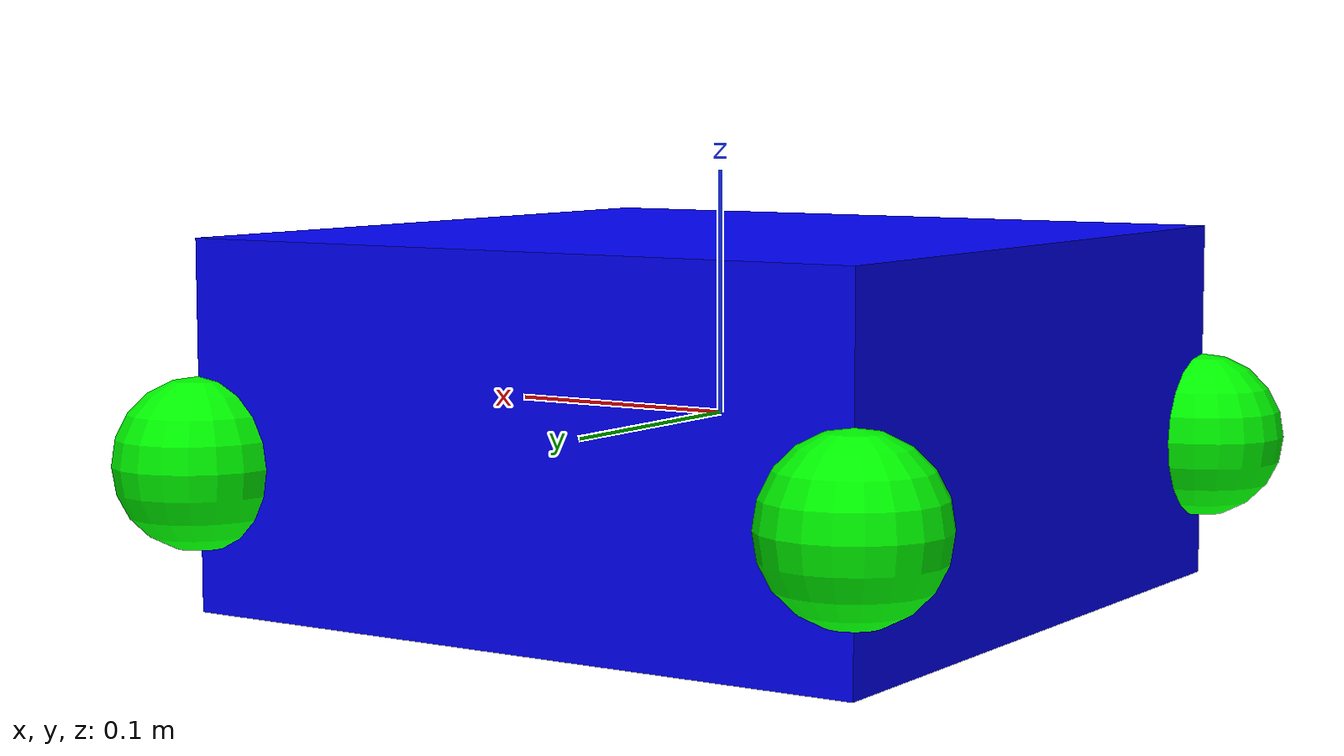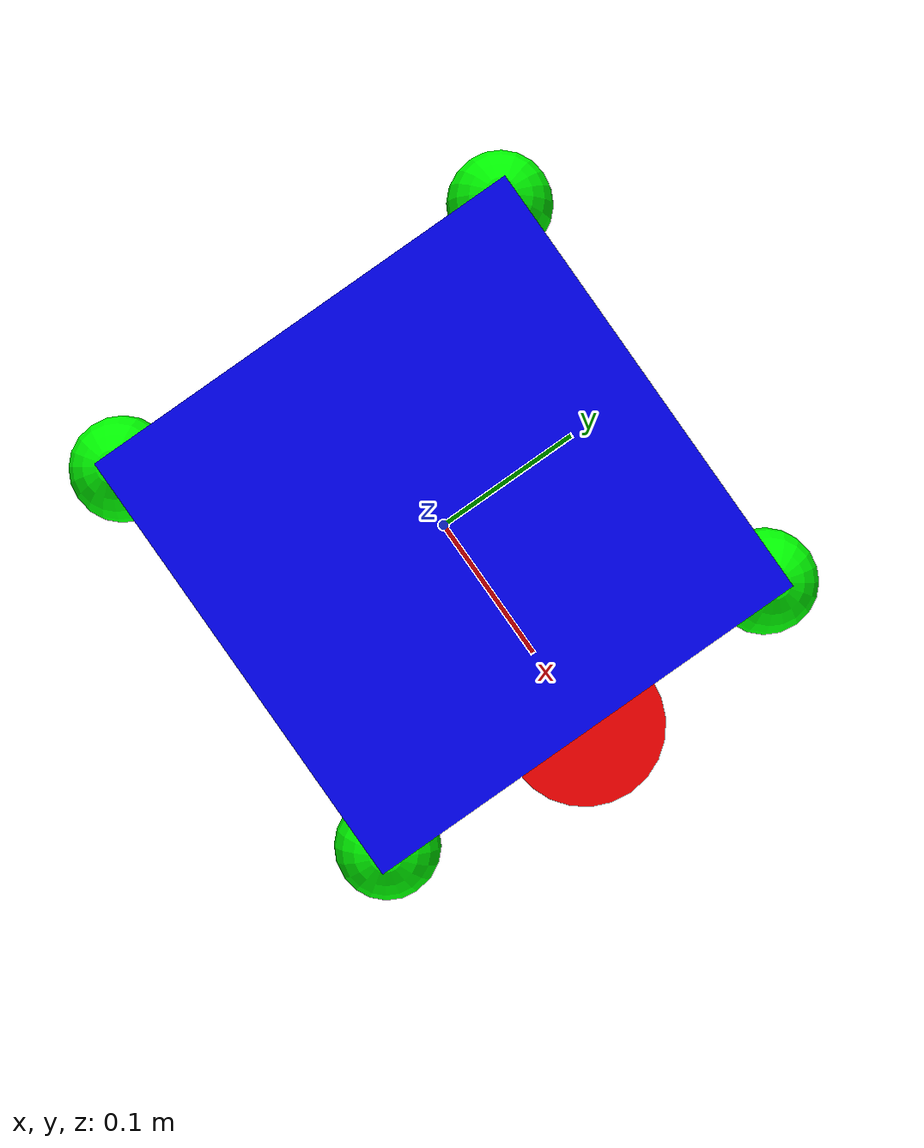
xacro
<robot name="HolonomicUrdf" xmlns:xacro="http://ros.org/wiki/xacro">
    <xacro:include filename="$(find holonomic_sim)/models/xacro/common.xacro"/>

    <link name="base_footprint"/>

    <xacro:property name="base_size" value="0.3"/>
    <xacro:rectangular_link_macro suffix="base" mass="20.0" arg="20.0" width="${base_size}" height="${base_size/2}" depth="${base_size}" if_collision="false" if_visual="true"/>
    <joint name="base_joint" type="fixed">
        <parent link="base_footprint"/>
        <child  link="base_link"/>
    </joint>

    <xacro:steer_macro suffix="wheel" parent="base_link" base_radius="0.3" wheel_radius="0.2" x="0" y="0" z="0" wheel_offset="0.15"/>
    <xacro:four_wheel_caster_macro parent="base_link" base_radius="${sqrt(base_size/2*base_size/2*2)}" caster_radius="0.035" z_offset="-0.015"/>

    <xacro:lidar_macro suffix="base" parent="base_link" x="0.15" y="0" z="0.025" rate="20" max_range="20" samples="270" angle="135" noise="0.01"/>

    <gazebo>
        <!-- Global odometer -->
        <plugin
            filename="ignition-gazebo-odometry-publisher-system"
            name="ignition::gazebo::systems::OdometryPublisher">
            <odom_publish_frequency>10</odom_publish_frequency>
            <odom_topic>/odom</odom_topic>
            <odom_frame>odom</odom_frame>
            <robot_base_frame>base_footprint</robot_base_frame>
            <tf_topic>/odom/tf</tf_topic>
        </plugin>

        <!-- Joint state publisher -->
        <plugin filename="libignition-gazebo-joint-state-publisher-system.so"
            name="ignition::gazebo::systems::JointStatePublisher">
            <topic>joint_states</topic>
        </plugin>

        <!-- Holonomic plugin -->
        <plugin filename="libHolonomicPlugin.so" name="holonomic_sim::HolonomicPlugin">
            <wheel_joint>wheel_joint</wheel_joint>
            <top_base_joint>top_wheel_base_joint</top_base_joint>
            <bottom_base_joint>bottom_wheel_base_joint</bottom_base_joint>
        </plugin>
    </gazebo>
</robot>

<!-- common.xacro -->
<robot xmlns:xacro="http://ros.org/wiki/xacro">
    <!-- basic material macro-->
    <!-- some macro has arg params to control inertial value independent from mass-->
    <xacro:macro name="sphere_macro" params="suffix parent mass arg radius x y z">
        <xacro:property name="inertia" value="${2/5*arg*radius*radius}"/>
        <link name="${suffix}_link">
            <inertial>
                <mass value="${mass}"/>
                <origin xyz="0 0 0" rpy="0 0 0"/>
                <inertia ixx="${inertia}" ixy="0.0" ixz="0.0" iyy="${inertia}" iyz="0.0" izz="${inertia}"/>
            </inertial>
            <visual>
                <geometry>
                    <sphere radius="${radius}"/>
                </geometry>
                <material name="green">
                    <color rgba="0.0 1.0 0.0 1.0"/>
                </material>
            </visual>
            <collision>
                <geometry>
                    <sphere radius="${radius}"/>
                </geometry>
                <origin xyz="0 0 0" rpy="0 0 0"/>
            </collision>
        </link>

        <joint name="${suffix}_joint" type="fixed">
            <origin rpy="0 0 0" xyz="${x} ${y} ${z}"/>
            <parent link="${parent}"/>
            <child  link="${suffix}_link"/>
        </joint>
    </xacro:macro>

    <xacro:macro name="cylinder_link_macro" params="suffix mass arg radius length if_collision if_visual">
        <xacro:property name="sq_r" value="${radius*radius}"/>
        <xacro:property name="sq_l" value="${length*length}"/>
        <link name="${suffix}_link">
            <inertial>
                <mass value="${mass}"/>
                <origin xyz="0 0 0" rpy="0 0 0"/>
                <inertia ixx="${3*sq_r*arg/12+sq_l*arg/12}" ixy="0.0" ixz="0.0" iyy="${3*sq_r*arg/12+sq_l*arg/12}"
                iyz="0.0" izz="${arg*sq_r/2}"/>
            </inertial>
            <xacro:if value="${if_visual}">
                <visual>
                    <geometry>
                        <cylinder length="${length}" radius="${radius}"/>
                    </geometry>
                    <material name="red">
                        <color rgba="1.0 0.0 0.0 1.0"/>
                    </material>
                </visual>
            </xacro:if>
            <xacro:if value="${if_collision}">
                <collision>
                    <geometry>
                        <cylinder length="${length}" radius="${radius}"/>
                    </geometry>
                    <origin xyz="0 0 0" rpy="0 0 0"/>
                </collision>
            </xacro:if>
        </link>
    </xacro:macro>

    <xacro:macro name="rectangular_link_macro" params="suffix mass arg width depth height if_collision if_visual">
        <xacro:property name="sq_w" value="${width*width}"/>
        <xacro:property name="sq_d" value="${depth*depth}"/>
        <xacro:property name="sq_h" value="${height*height}"/>
        <link name="${suffix}_link">
            <inertial>
                <mass value="${mass}"/>
                <origin xyz="0 0 0" rpy="0 0 0"/>
                <inertia ixx="${arg*sq_d/12+arg*sq_h/12}" ixy="0.0" ixz="0.0"
                iyy="${arg*sq_w/12+arg*sq_h/12}" iyz="0.0" izz="${arg*sq_w/12+arg*sq_d/12}"/>
            </inertial>
            <xacro:if value="${if_visual}">
                <visual>
                    <geometry>
                        <box size="${width} ${depth} ${height}"/>
                    </geometry>
                    <material name="blue">
                        <color rgba="0.0 0.0 1.0 1.0"/>
                    </material>
                </visual>
            </xacro:if>
            <xacro:if value="${if_collision}">
                <collision>
                    <geometry>
                        <box size="${width} ${depth} ${height}"/>
                    </geometry>
                    <origin xyz="0 0 0" rpy="0 0 0"/>
                </collision>
            </xacro:if>
        </link>
    </xacro:macro>

    <!-- lidar macro with lidar plugin for ign gz-->
    <xacro:macro name="lidar_macro" params="suffix parent x y z rate max_range samples angle noise">
        <xacro:cylinder_link_macro suffix="${suffix}_lidar" mass="0.0001" arg="0.0001" radius="0.05" length="0.05" if_collision="false"  if_visual="true"/>
        <joint name="${suffix}_lidar_joint" type="fixed">
            <parent link="${parent}"/>
            <child  link="${suffix}_lidar_link"/>
            <origin xyz="${x} ${y} ${z}" rpy="0 0 0"/>
        </joint>
        <gazebo reference="${suffix}_lidar_link">
            <sensor name="gpu_lidar" type="gpu_lidar">
                <topic>/scan</topic>
                <ignition_frame_id>${suffix}_lidar_link</ignition_frame_id>
                <update_rate>${rate}</update_rate>
                <ray>
                  <scan>
                    <horizontal>
                      <samples>${samples}</samples>
                      <resolution>1</resolution>
                      <min_angle>${-radians(angle)}</min_angle>
                      <max_angle>${radians(angle)}</max_angle>
                    </horizontal>
                  </scan>
                  <range>
                    <min>0.01</min>
                    <max>${max_range}</max>
                  </range>
                  <noise>
                    <type>gaussian</type>
                    <mean>0.0</mean>
                    <stddev>${noise}</stddev>
                  </noise>
                </ray>
                <always_on>true</always_on>
                <visualize>true</visualize>
              </sensor>
        </gazebo>
      </xacro:macro>

    <!-- four wheel caster macro -->
    <xacro:macro name="four_wheel_caster_macro" params="parent base_radius caster_radius z_offset">
        <xacro:property name="x" value="${base_radius*cos(pi/4)}" />
        <xacro:sphere_macro suffix="caster1" parent="${parent}" mass="0.3" arg="0.3" radius="${caster_radius}" x="${x}" y="${x}" z="${z_offset}"/>
        <xacro:sphere_macro suffix="caster2" parent="${parent}" mass="0.3" arg="0.3" radius="${caster_radius}" x="${-x}" y="${x}" z="${z_offset}"/>
        <xacro:sphere_macro suffix="caster3" parent="${parent}" mass="0.3" arg="0.3" radius="${caster_radius}" x="${-x}" y="${-x}" z="${z_offset}"/>
        <xacro:sphere_macro suffix="caster4" parent="${parent}" mass="0.3" arg="0.3" radius="${caster_radius}" x="${x}" y="${-x}" z="${z_offset}"/>
    </xacro:macro>

    <!-- holonomic steer macro -->
    <xacro:macro name="steer_macro" params="suffix parent base_radius wheel_radius wheel_offset x y z">
        <xacro:cylinder_link_macro suffix="top_${suffix}_base" mass="1.0" arg="1.0" radius="${base_radius}" length="0.001" if_collision="false" if_visual="false"/>
        <joint name="top_${suffix}_base_joint" type="continuous">
            <parent link="${parent}"/>
            <child  link="top_${suffix}_base_link"/>
            <origin xyz="${x} ${y} ${z+0.1}" rpy="0 0 0"/>
            <axis xyz="0 0 1"/>
        </joint>

        <xacro:cylinder_link_macro suffix="bottom_${suffix}_base" mass="1.0" arg="100000.0" radius="${base_radius}" length="0.001" if_collision="false" if_visual="false"/>
        <joint name="bottom_${suffix}_base_joint" type="continuous">
            <parent link="top_${suffix}_base_link"/>
            <child  link="bottom_${suffix}_base_link"/>
            <origin xyz="${x} ${y} ${z-0.1}" rpy="0 0 0"/>
            <axis xyz="0 0 1"/>
        </joint>

        <xacro:cylinder_link_macro suffix="${suffix}" mass="0.0001" arg="0.0001" radius="${wheel_radius}" length="0.001" if_collision="true" if_visual="false"/>
        <joint name="${suffix}_joint" type="continuous">
            <parent link="bottom_${suffix}_base_link"/>
            <child  link="${suffix}_link"/>
            <origin xyz="0 0 ${wheel_offset}" rpy="-1.57 0 0"/>
            <axis xyz="0 0 1"/>
        </joint>
    </xacro:macro>
</robot>
